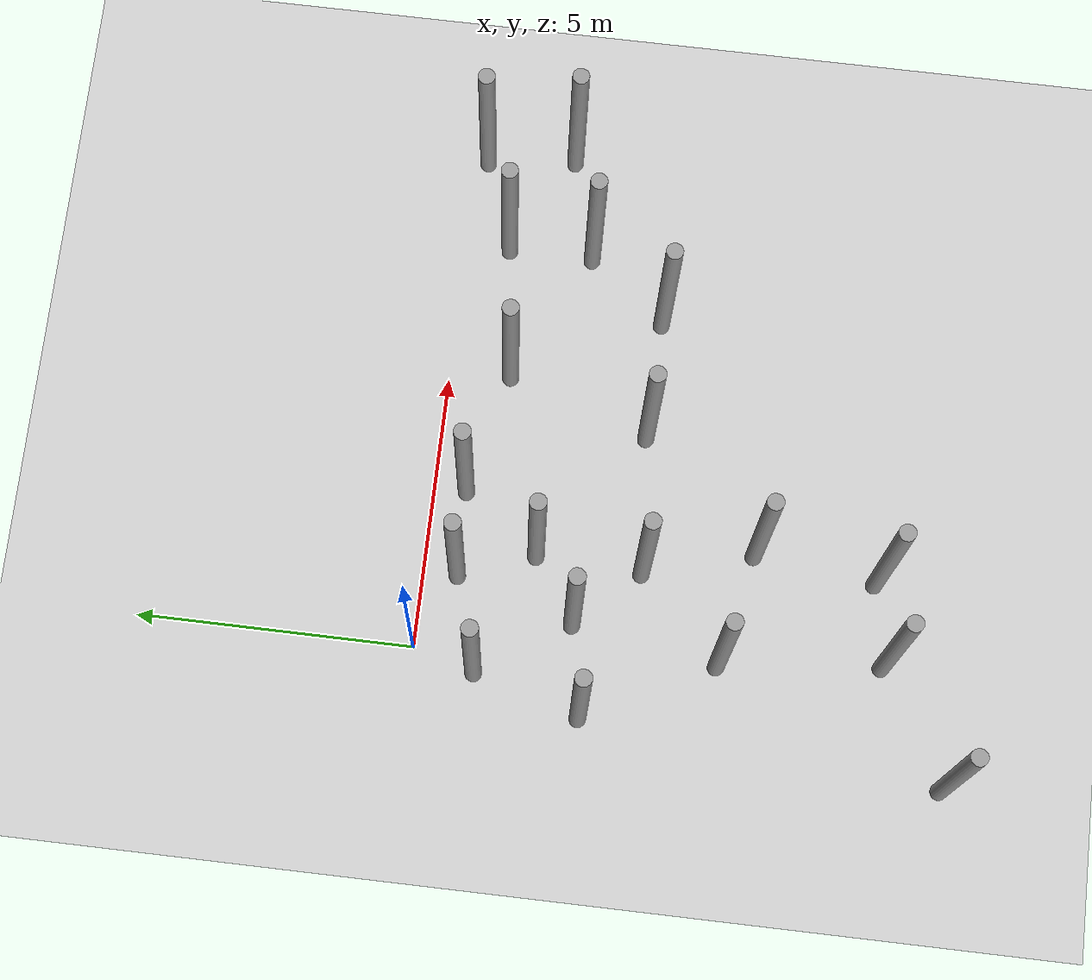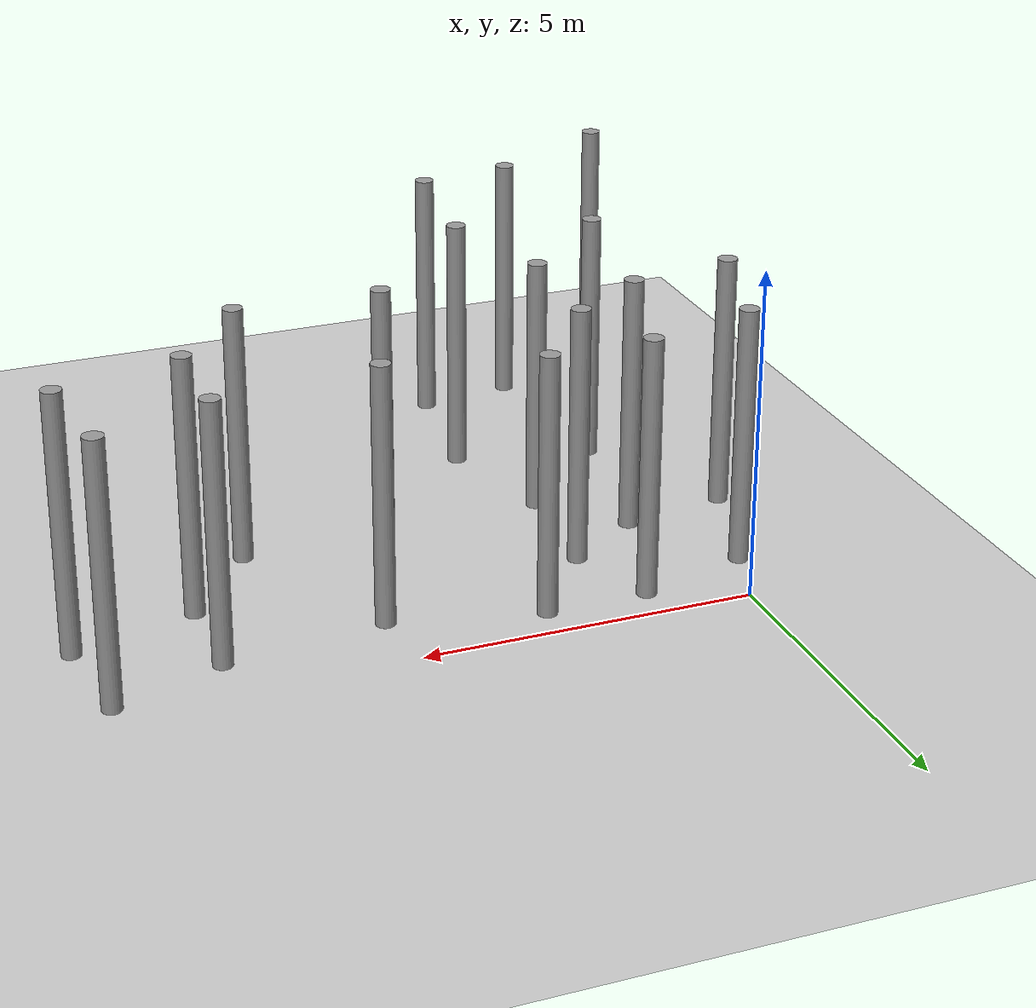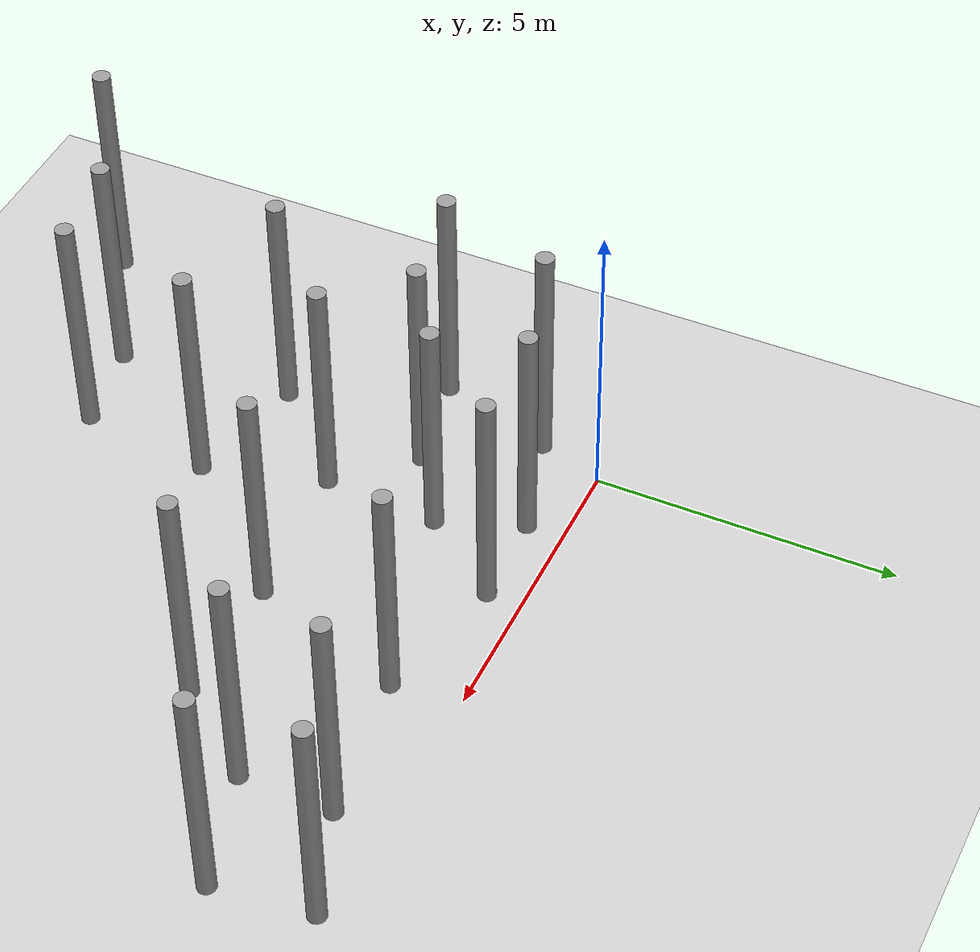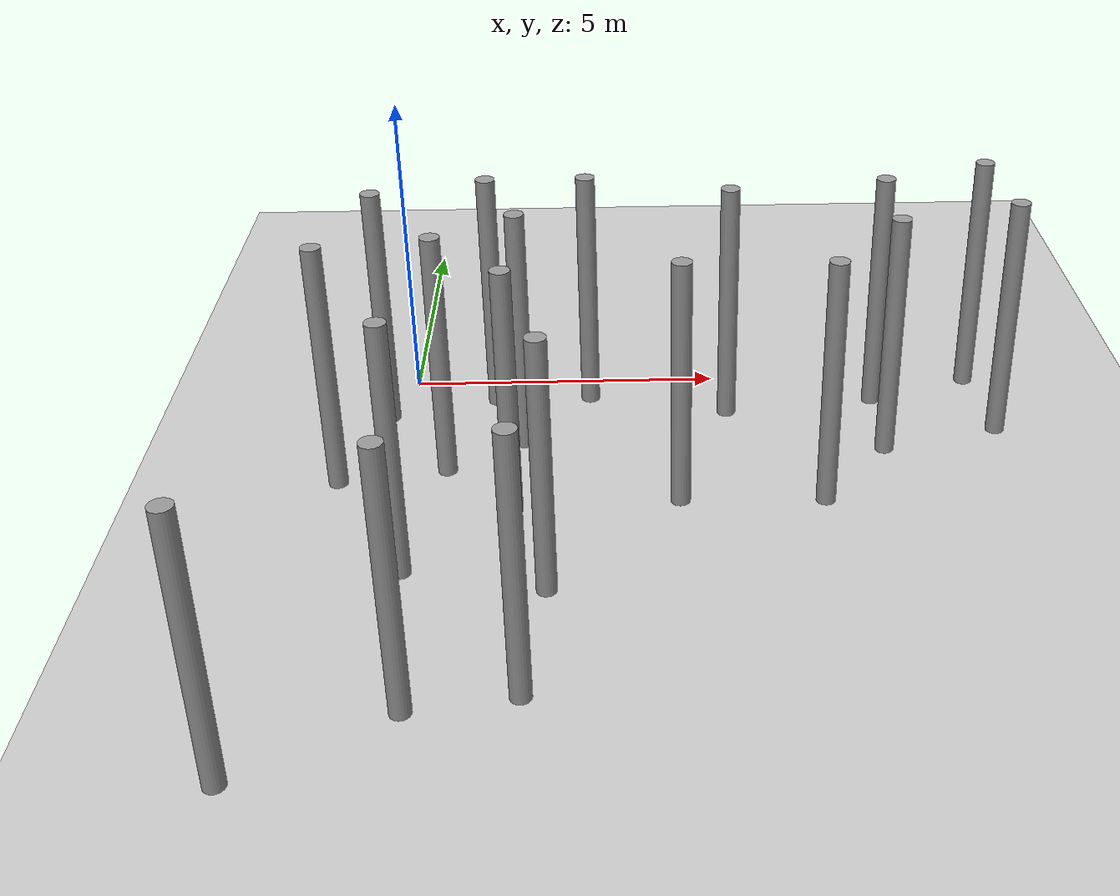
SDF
<sdf version="1.6">
 <world name="default">
  <model name="ground_plane">
   <static>1</static>
   <link name="link">
    <collision name="collision">
     <geometry><plane><normal>0 0 1</normal><size>100 100</size></plane></geometry>
     <surface><friction><ode><mu>100</mu><mu2>50</mu2></ode></friction></surface>
    </collision>
    <visual name="visual">
     <cast_shadows>0</cast_shadows>
     <geometry><plane><normal>0 0 1</normal><size>100 100</size></plane></geometry>
     <material>
      <script><uri>file://media/materials/scripts/gazebo.material</uri><name>Gazebo/Grey</name></script>
     </material>
    </visual>
   </link>
  </model>
  <model name="unit_cylinder_clone_26">
   <link name="link">
    <inertial>
     <mass>1000</mass>
     <inertia><ixx>145.833</ixx><ixy>0</ixy><ixz>0</ixz><iyy>145.833</iyy><iyz>0</iyz><izz>125</izz></inertia>
    </inertial>
    <visual name="visual">
     <geometry><cylinder><radius>0.15</radius><length>4</length></cylinder></geometry>
     <material>
      <script><name>Gazebo/Grey</name><uri>file://media/materials/scripts/gazebo.material</uri></script>
      <shader type="pixel"><normal_map>__default__</normal_map></shader>
      <ambient>0.3 0.3 0.3 1</ambient>
      <diffuse>0.7 0.7 0.7 1</diffuse>
      <specular>0.01 0.01 0.01 1</specular>
      <emissive>0 0 0 1</emissive>
     </material>
    </visual>
    <collision name="collision">
     <geometry><cylinder><radius>0.15</radius><length>4</length></cylinder></geometry>
     <surface>
      <friction>
       <ode><mu>1</mu><mu2>1</mu2><fdir1>0 0 0</fdir1><slip1>0</slip1><slip2>0</slip2></ode>
       <torsional>
        <coefficient>1</coefficient>
        <patch_radius>0</patch_radius>
        <surface_radius>0</surface_radius>
        <use_patch_radius>1</use_patch_radius>
        <ode><slip>0</slip></ode>
       </torsional>
      </friction>
      <bounce><restitution_coefficient>0</restitution_coefficient><threshold>1e+06</threshold></bounce>
      <contact>
       <collide_without_contact>0</collide_without_contact>
       <collide_without_contact_bitmask>1</collide_without_contact_bitmask>
       <collide_bitmask>1</collide_bitmask>
       <ode>
        <soft_cfm>0</soft_cfm>
        <soft_erp>0.2</soft_erp>
        <kp>1e+13</kp>
        <kd>1</kd>
        <max_vel>0.01</max_vel>
        <min_depth>0</min_depth>
       </ode>
       <bullet>
        <split_impulse>1</split_impulse>
        <split_impulse_penetration_threshold>-0.01</split_impulse_penetration_threshold>
        <soft_cfm>0</soft_cfm>
        <soft_erp>0.2</soft_erp>
        <kp>1e+13</kp>
        <kd>1</kd>
       </bullet>
      </contact>
     </surface>
    </collision>
   </link>
   <static>0</static>
   <pose>2.93407 -0.573866 2 0 0 -0.002925</pose>
  </model>
  <model name="unit_cylinder_clone_27">
   <link name="link">
    <inertial>
     <mass>1000</mass>
     <inertia><ixx>145.833</ixx><ixy>0</ixy><ixz>0</ixz><iyy>145.833</iyy><iyz>0</iyz><izz>125</izz></inertia>
    </inertial>
    <visual name="visual">
     <geometry><cylinder><radius>0.15</radius><length>4</length></cylinder></geometry>
     <material>
      <script><name>Gazebo/Grey</name><uri>file://media/materials/scripts/gazebo.material</uri></script>
      <shader type="pixel"><normal_map>__default__</normal_map></shader>
      <ambient>0.3 0.3 0.3 1</ambient>
      <diffuse>0.7 0.7 0.7 1</diffuse>
      <specular>0.01 0.01 0.01 1</specular>
      <emissive>0 0 0 1</emissive>
     </material>
    </visual>
    <collision name="collision">
     <geometry><cylinder><radius>0.15</radius><length>4</length></cylinder></geometry>
     <surface>
      <friction>
       <ode><mu>1</mu><mu2>1</mu2><fdir1>0 0 0</fdir1><slip1>0</slip1><slip2>0</slip2></ode>
       <torsional>
        <coefficient>1</coefficient>
        <patch_radius>0</patch_radius>
        <surface_radius>0</surface_radius>
        <use_patch_radius>1</use_patch_radius>
        <ode><slip>0</slip></ode>
       </torsional>
      </friction>
      <bounce><restitution_coefficient>0</restitution_coefficient><threshold>1e+06</threshold></bounce>
      <contact>
       <collide_without_contact>0</collide_without_contact>
       <collide_without_contact_bitmask>1</collide_without_contact_bitmask>
       <collide_bitmask>1</collide_bitmask>
       <ode>
        <soft_cfm>0</soft_cfm>
        <soft_erp>0.2</soft_erp>
        <kp>1e+13</kp>
        <kd>1</kd>
        <max_vel>0.01</max_vel>
        <min_depth>0</min_depth>
       </ode>
       <bullet>
        <split_impulse>1</split_impulse>
        <split_impulse_penetration_threshold>-0.01</split_impulse_penetration_threshold>
        <soft_cfm>0</soft_cfm>
        <soft_erp>0.2</soft_erp>
        <kp>1e+13</kp>
        <kd>1</kd>
       </bullet>
      </contact>
     </surface>
    </collision>
   </link>
   <static>0</static>
   <pose>1.88877 -1.95941 2 0 0 -0.002924</pose>
  </model>
  <model name="unit_cylinder_clone_31">
   <link name="link">
    <inertial>
     <mass>1000</mass>
     <inertia><ixx>145.833</ixx><ixy>0</ixy><ixz>0</ixz><iyy>145.833</iyy><iyz>0</iyz><izz>125</izz></inertia>
    </inertial>
    <visual name="visual">
     <geometry><cylinder><radius>0.15</radius><length>4</length></cylinder></geometry>
     <material>
      <script><name>Gazebo/Grey</name><uri>file://media/materials/scripts/gazebo.material</uri></script>
      <shader type="pixel"><normal_map>__default__</normal_map></shader>
      <ambient>0.3 0.3 0.3 1</ambient>
      <diffuse>0.7 0.7 0.7 1</diffuse>
      <specular>0.01 0.01 0.01 1</specular>
      <emissive>0 0 0 1</emissive>
     </material>
    </visual>
    <collision name="collision">
     <geometry><cylinder><radius>0.15</radius><length>4</length></cylinder></geometry>
     <surface>
      <friction>
       <ode><mu>1</mu><mu2>1</mu2><fdir1>0 0 0</fdir1><slip1>0</slip1><slip2>0</slip2></ode>
       <torsional>
        <coefficient>1</coefficient>
        <patch_radius>0</patch_radius>
        <surface_radius>0</surface_radius>
        <use_patch_radius>1</use_patch_radius>
        <ode><slip>0</slip></ode>
       </torsional>
      </friction>
      <bounce><restitution_coefficient>0</restitution_coefficient><threshold>1e+06</threshold></bounce>
      <contact>
       <collide_without_contact>0</collide_without_contact>
       <collide_without_contact_bitmask>1</collide_without_contact_bitmask>
       <collide_bitmask>1</collide_bitmask>
       <ode>
        <soft_cfm>0</soft_cfm>
        <soft_erp>0.2</soft_erp>
        <kp>1e+13</kp>
        <kd>1</kd>
        <max_vel>0.01</max_vel>
        <min_depth>0</min_depth>
       </ode>
       <bullet>
        <split_impulse>1</split_impulse>
        <split_impulse_penetration_threshold>-0.01</split_impulse_penetration_threshold>
        <soft_cfm>0</soft_cfm>
        <soft_erp>0.2</soft_erp>
        <kp>1e+13</kp>
        <kd>1</kd>
       </bullet>
      </contact>
     </surface>
    </collision>
   </link>
   <static>0</static>
   <pose>5.18009 -1.11592 2 0 0 -0.002846</pose>
  </model>
  <model name="unit_cylinder_clone_32">
   <link name="link">
    <inertial>
     <mass>1000</mass>
     <inertia><ixx>145.833</ixx><ixy>0</ixy><ixz>0</ixz><iyy>145.833</iyy><iyz>0</iyz><izz>125</izz></inertia>
    </inertial>
    <visual name="visual">
     <geometry><cylinder><radius>0.15</radius><length>4</length></cylinder></geometry>
     <material>
      <script><name>Gazebo/Grey</name><uri>file://media/materials/scripts/gazebo.material</uri></script>
      <shader type="pixel"><normal_map>__default__</normal_map></shader>
      <ambient>0.3 0.3 0.3 1</ambient>
      <diffuse>0.7 0.7 0.7 1</diffuse>
      <specular>0.01 0.01 0.01 1</specular>
      <emissive>0 0 0 1</emissive>
     </material>
    </visual>
    <collision name="collision">
     <geometry><cylinder><radius>0.15</radius><length>4</length></cylinder></geometry>
     <surface>
      <friction>
       <ode><mu>1</mu><mu2>1</mu2><fdir1>0 0 0</fdir1><slip1>0</slip1><slip2>0</slip2></ode>
       <torsional>
        <coefficient>1</coefficient>
        <patch_radius>0</patch_radius>
        <surface_radius>0</surface_radius>
        <use_patch_radius>1</use_patch_radius>
        <ode><slip>0</slip></ode>
       </torsional>
      </friction>
      <bounce><restitution_coefficient>0</restitution_coefficient><threshold>1e+06</threshold></bounce>
      <contact>
       <collide_without_contact>0</collide_without_contact>
       <collide_without_contact_bitmask>1</collide_without_contact_bitmask>
       <collide_bitmask>1</collide_bitmask>
       <ode>
        <soft_cfm>0</soft_cfm>
        <soft_erp>0.2</soft_erp>
        <kp>1e+13</kp>
        <kd>1</kd>
        <max_vel>0.01</max_vel>
        <min_depth>0</min_depth>
       </ode>
       <bullet>
        <split_impulse>1</split_impulse>
        <split_impulse_penetration_threshold>-0.01</split_impulse_penetration_threshold>
        <soft_cfm>0</soft_cfm>
        <soft_erp>0.2</soft_erp>
        <kp>1e+13</kp>
        <kd>1</kd>
       </bullet>
      </contact>
     </surface>
    </collision>
   </link>
   <static>0</static>
   <pose>7.61991 -2.35221 1.99999 0 0 -0.002785</pose>
  </model>
  <model name="unit_cylinder_clone_33">
   <link name="link">
    <inertial>
     <mass>1000</mass>
     <inertia><ixx>145.833</ixx><ixy>0</ixy><ixz>0</ixz><iyy>145.833</iyy><iyz>0</iyz><izz>125</izz></inertia>
    </inertial>
    <visual name="visual">
     <geometry><cylinder><radius>0.15</radius><length>4</length></cylinder></geometry>
     <material>
      <script><name>Gazebo/Grey</name><uri>file://media/materials/scripts/gazebo.material</uri></script>
      <shader type="pixel"><normal_map>__default__</normal_map></shader>
      <ambient>0.3 0.3 0.3 1</ambient>
      <diffuse>0.7 0.7 0.7 1</diffuse>
      <specular>0.01 0.01 0.01 1</specular>
      <emissive>0 0 0 1</emissive>
     </material>
    </visual>
    <collision name="collision">
     <geometry><cylinder><radius>0.15</radius><length>4</length></cylinder></geometry>
     <surface>
      <friction>
       <ode><mu>1</mu><mu2>1</mu2><fdir1>0 0 0</fdir1><slip1>0</slip1><slip2>0</slip2></ode>
       <torsional>
        <coefficient>1</coefficient>
        <patch_radius>0</patch_radius>
        <surface_radius>0</surface_radius>
        <use_patch_radius>1</use_patch_radius>
        <ode><slip>0</slip></ode>
       </torsional>
      </friction>
      <bounce><restitution_coefficient>0</restitution_coefficient><threshold>1e+06</threshold></bounce>
      <contact>
       <collide_without_contact>0</collide_without_contact>
       <collide_without_contact_bitmask>1</collide_without_contact_bitmask>
       <collide_bitmask>1</collide_bitmask>
       <ode>
        <soft_cfm>0</soft_cfm>
        <soft_erp>0.2</soft_erp>
        <kp>1e+13</kp>
        <kd>1</kd>
        <max_vel>0.01</max_vel>
        <min_depth>0</min_depth>
       </ode>
       <bullet>
        <split_impulse>1</split_impulse>
        <split_impulse_penetration_threshold>-0.01</split_impulse_penetration_threshold>
        <soft_cfm>0</soft_cfm>
        <soft_erp>0.2</soft_erp>
        <kp>1e+13</kp>
        <kd>1</kd>
       </bullet>
      </contact>
     </surface>
    </collision>
   </link>
   <static>0</static>
   <pose>9.32456 -0.210842 1.99999 0 0 -0.002798</pose>
  </model>
  <model name="unit_cylinder_clone_34">
   <link name="link">
    <inertial>
     <mass>1000</mass>
     <inertia><ixx>145.833</ixx><ixy>0</ixy><ixz>0</ixz><iyy>145.833</iyy><iyz>0</iyz><izz>125</izz></inertia>
    </inertial>
    <visual name="visual">
     <geometry><cylinder><radius>0.15</radius><length>4</length></cylinder></geometry>
     <material>
      <script><name>Gazebo/Grey</name><uri>file://media/materials/scripts/gazebo.material</uri></script>
      <shader type="pixel"><normal_map>__default__</normal_map></shader>
      <ambient>0.3 0.3 0.3 1</ambient>
      <diffuse>0.7 0.7 0.7 1</diffuse>
      <specular>0.01 0.01 0.01 1</specular>
      <emissive>0 0 0 1</emissive>
     </material>
    </visual>
    <collision name="collision">
     <geometry><cylinder><radius>0.15</radius><length>4</length></cylinder></geometry>
     <surface>
      <friction>
       <ode><mu>1</mu><mu2>1</mu2><fdir1>0 0 0</fdir1><slip1>0</slip1><slip2>0</slip2></ode>
       <torsional>
        <coefficient>1</coefficient>
        <patch_radius>0</patch_radius>
        <surface_radius>0</surface_radius>
        <use_patch_radius>1</use_patch_radius>
        <ode><slip>0</slip></ode>
       </torsional>
      </friction>
      <bounce><restitution_coefficient>0</restitution_coefficient><threshold>1e+06</threshold></bounce>
      <contact>
       <collide_without_contact>0</collide_without_contact>
       <collide_without_contact_bitmask>1</collide_without_contact_bitmask>
       <collide_bitmask>1</collide_bitmask>
       <ode>
        <soft_cfm>0</soft_cfm>
        <soft_erp>0.2</soft_erp>
        <kp>1e+13</kp>
        <kd>1</kd>
        <max_vel>0.01</max_vel>
        <min_depth>0</min_depth>
       </ode>
       <bullet>
        <split_impulse>1</split_impulse>
        <split_impulse_penetration_threshold>-0.01</split_impulse_penetration_threshold>
        <soft_cfm>0</soft_cfm>
        <soft_erp>0.2</soft_erp>
        <kp>1e+13</kp>
        <kd>1</kd>
       </bullet>
      </contact>
     </surface>
    </collision>
   </link>
   <static>0</static>
   <pose>9.5139 -1.83248 1.99999 0 0 -0.002641</pose>
  </model>
  <model name="unit_cylinder_clone_36">
   <link name="link">
    <inertial>
     <mass>1000</mass>
     <inertia><ixx>145.833</ixx><ixy>0</ixy><ixz>0</ixz><iyy>145.833</iyy><iyz>0</iyz><izz>125</izz></inertia>
    </inertial>
    <visual name="visual">
     <geometry><cylinder><radius>0.15</radius><length>4</length></cylinder></geometry>
     <material>
      <script><name>Gazebo/Grey</name><uri>file://media/materials/scripts/gazebo.material</uri></script>
      <shader type="pixel"><normal_map>__default__</normal_map></shader>
      <ambient>0.3 0.3 0.3 1</ambient>
      <diffuse>0.7 0.7 0.7 1</diffuse>
      <specular>0.01 0.01 0.01 1</specular>
      <emissive>0 0 0 1</emissive>
     </material>
    </visual>
    <collision name="collision">
     <geometry><cylinder><radius>0.15</radius><length>4</length></cylinder></geometry>
     <surface>
      <friction>
       <ode><mu>1</mu><mu2>1</mu2><fdir1>0 0 0</fdir1><slip1>0</slip1><slip2>0</slip2></ode>
       <torsional>
        <coefficient>1</coefficient>
        <patch_radius>0</patch_radius>
        <surface_radius>0</surface_radius>
        <use_patch_radius>1</use_patch_radius>
        <ode><slip>0</slip></ode>
       </torsional>
      </friction>
      <bounce><restitution_coefficient>0</restitution_coefficient><threshold>1e+06</threshold></bounce>
      <contact>
       <collide_without_contact>0</collide_without_contact>
       <collide_without_contact_bitmask>1</collide_without_contact_bitmask>
       <collide_bitmask>1</collide_bitmask>
       <ode>
        <soft_cfm>0</soft_cfm>
        <soft_erp>0.2</soft_erp>
        <kp>1e+13</kp>
        <kd>1</kd>
        <max_vel>0.01</max_vel>
        <min_depth>0</min_depth>
       </ode>
       <bullet>
        <split_impulse>1</split_impulse>
        <split_impulse_penetration_threshold>-0.01</split_impulse_penetration_threshold>
        <soft_cfm>0</soft_cfm>
        <soft_erp>0.2</soft_erp>
        <kp>1e+13</kp>
        <kd>1</kd>
       </bullet>
      </contact>
     </surface>
    </collision>
   </link>
   <static>0</static>
   <pose>4.30534 -3.6941 2 0 0 -0.002606</pose>
  </model>
  <model name="unit_cylinder_clone_38">
   <link name="link">
    <inertial>
     <mass>1000</mass>
     <inertia><ixx>145.833</ixx><ixy>0</ixy><ixz>0</ixz><iyy>145.833</iyy><iyz>0</iyz><izz>125</izz></inertia>
    </inertial>
    <visual name="visual">
     <geometry><cylinder><radius>0.15</radius><length>4</length></cylinder></geometry>
     <material>
      <script><name>Gazebo/Grey</name><uri>file://media/materials/scripts/gazebo.material</uri></script>
      <shader type="pixel"><normal_map>__default__</normal_map></shader>
      <ambient>0.3 0.3 0.3 1</ambient>
      <diffuse>0.7 0.7 0.7 1</diffuse>
      <specular>0.01 0.01 0.01 1</specular>
      <emissive>0 0 0 1</emissive>
     </material>
    </visual>
    <collision name="collision">
     <geometry><cylinder><radius>0.15</radius><length>4</length></cylinder></geometry>
     <surface>
      <friction>
       <ode><mu>1</mu><mu2>1</mu2><fdir1>0 0 0</fdir1><slip1>0</slip1><slip2>0</slip2></ode>
       <torsional>
        <coefficient>1</coefficient>
        <patch_radius>0</patch_radius>
        <surface_radius>0</surface_radius>
        <use_patch_radius>1</use_patch_radius>
        <ode><slip>0</slip></ode>
       </torsional>
      </friction>
      <bounce><restitution_coefficient>0</restitution_coefficient><threshold>1e+06</threshold></bounce>
      <contact>
       <collide_without_contact>0</collide_without_contact>
       <collide_without_contact_bitmask>1</collide_without_contact_bitmask>
       <collide_bitmask>1</collide_bitmask>
       <ode>
        <soft_cfm>0</soft_cfm>
        <soft_erp>0.2</soft_erp>
        <kp>1e+13</kp>
        <kd>1</kd>
        <max_vel>0.01</max_vel>
        <min_depth>0</min_depth>
       </ode>
       <bullet>
        <split_impulse>1</split_impulse>
        <split_impulse_penetration_threshold>-0.01</split_impulse_penetration_threshold>
        <soft_cfm>0</soft_cfm>
        <soft_erp>0.2</soft_erp>
        <kp>1e+13</kp>
        <kd>1</kd>
       </bullet>
      </contact>
     </surface>
    </collision>
   </link>
   <static>0</static>
   <pose>0.265071 -5.35656 1.99999 0 0 -0.002835</pose>
  </model>
  <model name="unit_cylinder_clone_40">
   <link name="link">
    <inertial>
     <mass>1000</mass>
     <inertia><ixx>145.833</ixx><ixy>0</ixy><ixz>0</ixz><iyy>145.833</iyy><iyz>0</iyz><izz>125</izz></inertia>
    </inertial>
    <visual name="visual">
     <geometry><cylinder><radius>0.15</radius><length>4</length></cylinder></geometry>
     <material>
      <script><name>Gazebo/Grey</name><uri>file://media/materials/scripts/gazebo.material</uri></script>
      <shader type="pixel"><normal_map>__default__</normal_map></shader>
      <ambient>0.3 0.3 0.3 1</ambient>
      <diffuse>0.7 0.7 0.7 1</diffuse>
      <specular>0.01 0.01 0.01 1</specular>
      <emissive>0 0 0 1</emissive>
     </material>
    </visual>
    <collision name="collision">
     <geometry><cylinder><radius>0.15</radius><length>4</length></cylinder></geometry>
     <surface>
      <friction>
       <ode><mu>1</mu><mu2>1</mu2><fdir1>0 0 0</fdir1><slip1>0</slip1><slip2>0</slip2></ode>
       <torsional>
        <coefficient>1</coefficient>
        <patch_radius>0</patch_radius>
        <surface_radius>0</surface_radius>
        <use_patch_radius>1</use_patch_radius>
        <ode><slip>0</slip></ode>
       </torsional>
      </friction>
      <bounce><restitution_coefficient>0</restitution_coefficient><threshold>1e+06</threshold></bounce>
      <contact>
       <collide_without_contact>0</collide_without_contact>
       <collide_without_contact_bitmask>1</collide_without_contact_bitmask>
       <collide_bitmask>1</collide_bitmask>
       <ode>
        <soft_cfm>0</soft_cfm>
        <soft_erp>0.2</soft_erp>
        <kp>1e+13</kp>
        <kd>1</kd>
        <max_vel>0.01</max_vel>
        <min_depth>0</min_depth>
       </ode>
       <bullet>
        <split_impulse>1</split_impulse>
        <split_impulse_penetration_threshold>-0.01</split_impulse_penetration_threshold>
        <soft_cfm>0</soft_cfm>
        <soft_erp>0.2</soft_erp>
        <kp>1e+13</kp>
        <kd>1</kd>
       </bullet>
      </contact>
     </surface>
    </collision>
   </link>
   <static>0</static>
   <pose>0.580232 -8.26412 1.99999 0 0 -0.002727</pose>
  </model>
  <model name="unit_cylinder_clone_41">
   <link name="link">
    <inertial>
     <mass>1000</mass>
     <inertia><ixx>145.833</ixx><ixy>0</ixy><ixz>0</ixz><iyy>145.833</iyy><iyz>0</iyz><izz>125</izz></inertia>
    </inertial>
    <visual name="visual">
     <geometry><cylinder><radius>0.15</radius><length>4</length></cylinder></geometry>
     <material>
      <script><name>Gazebo/Grey</name><uri>file://media/materials/scripts/gazebo.material</uri></script>
      <shader type="pixel"><normal_map>__default__</normal_map></shader>
      <ambient>0.3 0.3 0.3 1</ambient>
      <diffuse>0.7 0.7 0.7 1</diffuse>
      <specular>0.01 0.01 0.01 1</specular>
      <emissive>0 0 0 1</emissive>
     </material>
    </visual>
    <collision name="collision">
     <geometry><cylinder><radius>0.15</radius><length>4</length></cylinder></geometry>
     <surface>
      <friction>
       <ode><mu>1</mu><mu2>1</mu2><fdir1>0 0 0</fdir1><slip1>0</slip1><slip2>0</slip2></ode>
       <torsional>
        <coefficient>1</coefficient>
        <patch_radius>0</patch_radius>
        <surface_radius>0</surface_radius>
        <use_patch_radius>1</use_patch_radius>
        <ode><slip>0</slip></ode>
       </torsional>
      </friction>
      <bounce><restitution_coefficient>0</restitution_coefficient><threshold>1e+06</threshold></bounce>
      <contact>
       <collide_without_contact>0</collide_without_contact>
       <collide_without_contact_bitmask>1</collide_without_contact_bitmask>
       <collide_bitmask>1</collide_bitmask>
       <ode>
        <soft_cfm>0</soft_cfm>
        <soft_erp>0.2</soft_erp>
        <kp>1e+13</kp>
        <kd>1</kd>
        <max_vel>0.01</max_vel>
        <min_depth>0</min_depth>
       </ode>
       <bullet>
        <split_impulse>1</split_impulse>
        <split_impulse_penetration_threshold>-0.01</split_impulse_penetration_threshold>
        <soft_cfm>0</soft_cfm>
        <soft_erp>0.2</soft_erp>
        <kp>1e+13</kp>
        <kd>1</kd>
       </bullet>
      </contact>
     </surface>
    </collision>
   </link>
   <static>0</static>
   <pose>-1.47455 -9.43796 1.99999 0 0 -0.002771</pose>
  </model>
  <model name="unit_cylinder_clone_42">
   <link name="link">
    <inertial>
     <mass>1000</mass>
     <inertia><ixx>145.833</ixx><ixy>0</ixy><ixz>0</ixz><iyy>145.833</iyy><iyz>0</iyz><izz>125</izz></inertia>
    </inertial>
    <visual name="visual">
     <geometry><cylinder><radius>0.15</radius><length>4</length></cylinder></geometry>
     <material>
      <script><name>Gazebo/Grey</name><uri>file://media/materials/scripts/gazebo.material</uri></script>
      <shader type="pixel"><normal_map>__default__</normal_map></shader>
      <ambient>0.3 0.3 0.3 1</ambient>
      <diffuse>0.7 0.7 0.7 1</diffuse>
      <specular>0.01 0.01 0.01 1</specular>
      <emissive>0 0 0 1</emissive>
     </material>
    </visual>
    <collision name="collision">
     <geometry><cylinder><radius>0.15</radius><length>4</length></cylinder></geometry>
     <surface>
      <friction>
       <ode><mu>1</mu><mu2>1</mu2><fdir1>0 0 0</fdir1><slip1>0</slip1><slip2>0</slip2></ode>
       <torsional>
        <coefficient>1</coefficient>
        <patch_radius>0</patch_radius>
        <surface_radius>0</surface_radius>
        <use_patch_radius>1</use_patch_radius>
        <ode><slip>0</slip></ode>
       </torsional>
      </friction>
      <bounce><restitution_coefficient>0</restitution_coefficient><threshold>1e+06</threshold></bounce>
      <contact>
       <collide_without_contact>0</collide_without_contact>
       <collide_without_contact_bitmask>1</collide_without_contact_bitmask>
       <collide_bitmask>1</collide_bitmask>
       <ode>
        <soft_cfm>0</soft_cfm>
        <soft_erp>0.2</soft_erp>
        <kp>1e+13</kp>
        <kd>1</kd>
        <max_vel>0.01</max_vel>
        <min_depth>0</min_depth>
       </ode>
       <bullet>
        <split_impulse>1</split_impulse>
        <split_impulse_penetration_threshold>-0.01</split_impulse_penetration_threshold>
        <soft_cfm>0</soft_cfm>
        <soft_erp>0.2</soft_erp>
        <kp>1e+13</kp>
        <kd>1</kd>
       </bullet>
      </contact>
     </surface>
    </collision>
   </link>
   <static>0</static>
   <pose>2.34085 -5.83821 2 0 0 -0.003264</pose>
  </model>
  <model name="unit_cylinder_clone_44">
   <link name="link">
    <inertial>
     <mass>1000</mass>
     <inertia><ixx>145.833</ixx><ixy>0</ixy><ixz>0</ixz><iyy>145.833</iyy><iyz>0</iyz><izz>125</izz></inertia>
    </inertial>
    <visual name="visual">
     <geometry><cylinder><radius>0.15</radius><length>4</length></cylinder></geometry>
     <material>
      <script><name>Gazebo/Grey</name><uri>file://media/materials/scripts/gazebo.material</uri></script>
      <shader type="pixel"><normal_map>__default__</normal_map></shader>
      <ambient>0.3 0.3 0.3 1</ambient>
      <diffuse>0.7 0.7 0.7 1</diffuse>
      <specular>0.01 0.01 0.01 1</specular>
      <emissive>0 0 0 1</emissive>
     </material>
    </visual>
    <collision name="collision">
     <geometry><cylinder><radius>0.15</radius><length>4</length></cylinder></geometry>
     <surface>
      <friction>
       <ode><mu>1</mu><mu2>1</mu2><fdir1>0 0 0</fdir1><slip1>0</slip1><slip2>0</slip2></ode>
       <torsional>
        <coefficient>1</coefficient>
        <patch_radius>0</patch_radius>
        <surface_radius>0</surface_radius>
        <use_patch_radius>1</use_patch_radius>
        <ode><slip>0</slip></ode>
       </torsional>
      </friction>
      <bounce><restitution_coefficient>0</restitution_coefficient><threshold>1e+06</threshold></bounce>
      <contact>
       <collide_without_contact>0</collide_without_contact>
       <collide_without_contact_bitmask>1</collide_without_contact_bitmask>
       <collide_bitmask>1</collide_bitmask>
       <ode>
        <soft_cfm>0</soft_cfm>
        <soft_erp>0.2</soft_erp>
        <kp>1e+13</kp>
        <kd>1</kd>
        <max_vel>0.01</max_vel>
        <min_depth>0</min_depth>
       </ode>
       <bullet>
        <split_impulse>1</split_impulse>
        <split_impulse_penetration_threshold>-0.01</split_impulse_penetration_threshold>
        <soft_cfm>0</soft_cfm>
        <soft_erp>0.2</soft_erp>
        <kp>1e+13</kp>
        <kd>1</kd>
       </bullet>
      </contact>
     </surface>
    </collision>
   </link>
   <static>0</static>
   <pose>0.714324 -2.7357 1.99999 0 0 -0.002797</pose>
  </model>
  <model name="unit_cylinder_clone_45">
   <link name="link">
    <inertial>
     <mass>1000</mass>
     <inertia><ixx>145.833</ixx><ixy>0</ixy><ixz>0</ixz><iyy>145.833</iyy><iyz>0</iyz><izz>125</izz></inertia>
    </inertial>
    <visual name="visual">
     <geometry><cylinder><radius>0.15</radius><length>4</length></cylinder></geometry>
     <material>
      <script><name>Gazebo/Grey</name><uri>file://media/materials/scripts/gazebo.material</uri></script>
      <shader type="pixel"><normal_map>__default__</normal_map></shader>
      <ambient>0.3 0.3 0.3 1</ambient>
      <diffuse>0.7 0.7 0.7 1</diffuse>
      <specular>0.01 0.01 0.01 1</specular>
      <emissive>0 0 0 1</emissive>
     </material>
    </visual>
    <collision name="collision">
     <geometry><cylinder><radius>0.15</radius><length>4</length></cylinder></geometry>
     <surface>
      <friction>
       <ode><mu>1</mu><mu2>1</mu2><fdir1>0 0 0</fdir1><slip1>0</slip1><slip2>0</slip2></ode>
       <torsional>
        <coefficient>1</coefficient>
        <patch_radius>0</patch_radius>
        <surface_radius>0</surface_radius>
        <use_patch_radius>1</use_patch_radius>
        <ode><slip>0</slip></ode>
       </torsional>
      </friction>
      <bounce><restitution_coefficient>0</restitution_coefficient><threshold>1e+06</threshold></bounce>
      <contact>
       <collide_without_contact>0</collide_without_contact>
       <collide_without_contact_bitmask>1</collide_without_contact_bitmask>
       <collide_bitmask>1</collide_bitmask>
       <ode>
        <soft_cfm>0</soft_cfm>
        <soft_erp>0.2</soft_erp>
        <kp>1e+13</kp>
        <kd>1</kd>
        <max_vel>0.01</max_vel>
        <min_depth>0</min_depth>
       </ode>
       <bullet>
        <split_impulse>1</split_impulse>
        <split_impulse_penetration_threshold>-0.01</split_impulse_penetration_threshold>
        <soft_cfm>0</soft_cfm>
        <soft_erp>0.2</soft_erp>
        <kp>1e+13</kp>
        <kd>1</kd>
       </bullet>
      </contact>
     </surface>
    </collision>
   </link>
   <static>0</static>
   <pose>1.78349 -3.86859 2 0 0 -0.003094</pose>
  </model>
  <model name="unit_cylinder_clone_8_clone_0">
   <link name="link">
    <inertial>
     <mass>1000</mass>
     <inertia><ixx>145.833</ixx><ixy>0</ixy><ixz>0</ixz><iyy>145.833</iyy><iyz>0</iyz><izz>125</izz></inertia>
    </inertial>
    <visual name="visual">
     <geometry><cylinder><radius>0.15</radius><length>4</length></cylinder></geometry>
     <material>
      <script><name>Gazebo/Grey</name><uri>file://media/materials/scripts/gazebo.material</uri></script>
      <shader type="pixel"><normal_map>__default__</normal_map></shader>
      <ambient>0.3 0.3 0.3 1</ambient>
      <diffuse>0.7 0.7 0.7 1</diffuse>
      <specular>0.01 0.01 0.01 1</specular>
      <emissive>0 0 0 1</emissive>
     </material>
    </visual>
    <collision name="collision">
     <geometry><cylinder><radius>0.15</radius><length>4</length></cylinder></geometry>
     <surface>
      <friction>
       <ode><mu>1</mu><mu2>1</mu2><fdir1>0 0 0</fdir1><slip1>0</slip1><slip2>0</slip2></ode>
       <torsional>
        <coefficient>1</coefficient>
        <patch_radius>0</patch_radius>
        <surface_radius>0</surface_radius>
        <use_patch_radius>1</use_patch_radius>
        <ode><slip>0</slip></ode>
       </torsional>
      </friction>
      <bounce><restitution_coefficient>0</restitution_coefficient><threshold>1e+06</threshold></bounce>
      <contact>
       <collide_without_contact>0</collide_without_contact>
       <collide_without_contact_bitmask>1</collide_without_contact_bitmask>
       <collide_bitmask>1</collide_bitmask>
       <ode>
        <soft_cfm>0</soft_cfm>
        <soft_erp>0.2</soft_erp>
        <kp>1e+13</kp>
        <kd>1</kd>
        <max_vel>0.01</max_vel>
        <min_depth>0</min_depth>
       </ode>
       <bullet>
        <split_impulse>1</split_impulse>
        <split_impulse_penetration_threshold>-0.01</split_impulse_penetration_threshold>
        <soft_cfm>0</soft_cfm>
        <soft_erp>0.2</soft_erp>
        <kp>1e+13</kp>
        <kd>1</kd>
       </bullet>
      </contact>
     </surface>
    </collision>
   </link>
   <static>0</static>
   <pose>-0.9388 -3.02059 2 0 0 -0.002886</pose>
  </model>
  <model name="unit_cylinder_clone_0_clone">
   <link name="link">
    <inertial>
     <mass>1000</mass>
     <inertia><ixx>145.833</ixx><ixy>0</ixy><ixz>0</ixz><iyy>145.833</iyy><iyz>0</iyz><izz>125</izz></inertia>
    </inertial>
    <visual name="visual">
     <geometry><cylinder><radius>0.15</radius><length>4</length></cylinder></geometry>
     <material>
      <script><name>Gazebo/Grey</name><uri>file://media/materials/scripts/gazebo.material</uri></script>
      <shader type="pixel"><normal_map>__default__</normal_map></shader>
      <ambient>0.3 0.3 0.3 1</ambient>
      <diffuse>0.7 0.7 0.7 1</diffuse>
      <specular>0.01 0.01 0.01 1</specular>
      <emissive>0 0 0 1</emissive>
     </material>
    </visual>
    <collision name="collision">
     <geometry><cylinder><radius>0.15</radius><length>4</length></cylinder></geometry>
     <surface>
      <friction>
       <ode><mu>1</mu><mu2>1</mu2><fdir1>0 0 0</fdir1><slip1>0</slip1><slip2>0</slip2></ode>
       <torsional>
        <coefficient>1</coefficient>
        <patch_radius>0</patch_radius>
        <surface_radius>0</surface_radius>
        <use_patch_radius>1</use_patch_radius>
        <ode><slip>0</slip></ode>
       </torsional>
      </friction>
      <bounce><restitution_coefficient>0</restitution_coefficient><threshold>1e+06</threshold></bounce>
      <contact>
       <collide_without_contact>0</collide_without_contact>
       <collide_without_contact_bitmask>1</collide_without_contact_bitmask>
       <collide_bitmask>1</collide_bitmask>
       <ode>
        <soft_cfm>0</soft_cfm>
        <soft_erp>0.2</soft_erp>
        <kp>1e+13</kp>
        <kd>1</kd>
        <max_vel>0.01</max_vel>
        <min_depth>0</min_depth>
       </ode>
       <bullet>
        <split_impulse>1</split_impulse>
        <split_impulse_penetration_threshold>-0.01</split_impulse_penetration_threshold>
        <soft_cfm>0</soft_cfm>
        <soft_erp>0.2</soft_erp>
        <kp>1e+13</kp>
        <kd>1</kd>
       </bullet>
      </contact>
     </surface>
    </collision>
   </link>
   <static>0</static>
   <pose>6.50526 -3.7595 2 0 0 -0.002757</pose>
  </model>
  <model name="unit_cylinder_clone_44_clone">
   <link name="link">
    <inertial>
     <mass>1000</mass>
     <inertia><ixx>145.833</ixx><ixy>0</ixy><ixz>0</ixz><iyy>145.833</iyy><iyz>0</iyz><izz>125</izz></inertia>
    </inertial>
    <visual name="visual">
     <geometry><cylinder><radius>0.15</radius><length>4</length></cylinder></geometry>
     <material>
      <script><name>Gazebo/Grey</name><uri>file://media/materials/scripts/gazebo.material</uri></script>
      <shader type="pixel"><normal_map>__default__</normal_map></shader>
      <ambient>0.3 0.3 0.3 1</ambient>
      <diffuse>0.7 0.7 0.7 1</diffuse>
      <specular>0.01 0.01 0.01 1</specular>
      <emissive>0 0 0 1</emissive>
     </material>
    </visual>
    <collision name="collision">
     <geometry><cylinder><radius>0.15</radius><length>4</length></cylinder></geometry>
     <surface>
      <friction>
       <ode><mu>1</mu><mu2>1</mu2><fdir1>0 0 0</fdir1><slip1>0</slip1><slip2>0</slip2></ode>
       <torsional>
        <coefficient>1</coefficient>
        <patch_radius>0</patch_radius>
        <surface_radius>0</surface_radius>
        <use_patch_radius>1</use_patch_radius>
        <ode><slip>0</slip></ode>
       </torsional>
      </friction>
      <bounce><restitution_coefficient>0</restitution_coefficient><threshold>1e+06</threshold></bounce>
      <contact>
       <collide_without_contact>0</collide_without_contact>
       <collide_without_contact_bitmask>1</collide_without_contact_bitmask>
       <collide_bitmask>1</collide_bitmask>
       <ode>
        <soft_cfm>0</soft_cfm>
        <soft_erp>0.2</soft_erp>
        <kp>1e+13</kp>
        <kd>1</kd>
        <max_vel>0.01</max_vel>
        <min_depth>0</min_depth>
       </ode>
       <bullet>
        <split_impulse>1</split_impulse>
        <split_impulse_penetration_threshold>-0.01</split_impulse_penetration_threshold>
        <soft_cfm>0</soft_cfm>
        <soft_erp>0.2</soft_erp>
        <kp>1e+13</kp>
        <kd>1</kd>
       </bullet>
      </contact>
     </surface>
    </collision>
   </link>
   <static>0</static>
   <pose>-0.342905 -1.09751 2 0 0 -0.002817</pose>
  </model>
  <model name="unit_cylinder_clone_44_clone_1">
   <link name="link">
    <inertial>
     <mass>1000</mass>
     <inertia><ixx>145.833</ixx><ixy>0</ixy><ixz>0</ixz><iyy>145.833</iyy><iyz>0</iyz><izz>125</izz></inertia>
    </inertial>
    <visual name="visual">
     <geometry><cylinder><radius>0.15</radius><length>4</length></cylinder></geometry>
     <material>
      <script><name>Gazebo/Grey</name><uri>file://media/materials/scripts/gazebo.material</uri></script>
      <shader type="pixel"><normal_map>__default__</normal_map></shader>
      <ambient>0.3 0.3 0.3 1</ambient>
      <diffuse>0.7 0.7 0.7 1</diffuse>
      <specular>0.01 0.01 0.01 1</specular>
      <emissive>0 0 0 1</emissive>
     </material>
    </visual>
    <collision name="collision">
     <geometry><cylinder><radius>0.15</radius><length>4</length></cylinder></geometry>
     <surface>
      <friction>
       <ode><mu>1</mu><mu2>1</mu2><fdir1>0 0 0</fdir1><slip1>0</slip1><slip2>0</slip2></ode>
       <torsional>
        <coefficient>1</coefficient>
        <patch_radius>0</patch_radius>
        <surface_radius>0</surface_radius>
        <use_patch_radius>1</use_patch_radius>
        <ode><slip>0</slip></ode>
       </torsional>
      </friction>
      <bounce><restitution_coefficient>0</restitution_coefficient><threshold>1e+06</threshold></bounce>
      <contact>
       <collide_without_contact>0</collide_without_contact>
       <collide_without_contact_bitmask>1</collide_without_contact_bitmask>
       <collide_bitmask>1</collide_bitmask>
       <ode>
        <soft_cfm>0</soft_cfm>
        <soft_erp>0.2</soft_erp>
        <kp>1e+13</kp>
        <kd>1</kd>
        <max_vel>0.01</max_vel>
        <min_depth>0</min_depth>
       </ode>
       <bullet>
        <split_impulse>1</split_impulse>
        <split_impulse_penetration_threshold>-0.01</split_impulse_penetration_threshold>
        <soft_cfm>0</soft_cfm>
        <soft_erp>0.2</soft_erp>
        <kp>1e+13</kp>
        <kd>1</kd>
       </bullet>
      </contact>
     </surface>
    </collision>
   </link>
   <static>0</static>
   <pose>1.37641 -0.60214 1.99999 0 0 -0.002159</pose>
  </model>
  <model name="unit_cylinder_clone_44_clone_2">
   <link name="link">
    <inertial>
     <mass>1000</mass>
     <inertia><ixx>145.833</ixx><ixy>0</ixy><ixz>0</ixz><iyy>145.833</iyy><iyz>0</iyz><izz>125</izz></inertia>
    </inertial>
    <visual name="visual">
     <geometry><cylinder><radius>0.15</radius><length>4</length></cylinder></geometry>
     <material>
      <script><name>Gazebo/Grey</name><uri>file://media/materials/scripts/gazebo.material</uri></script>
      <shader type="pixel"><normal_map>__default__</normal_map></shader>
      <ambient>0.3 0.3 0.3 1</ambient>
      <diffuse>0.7 0.7 0.7 1</diffuse>
      <specular>0.01 0.01 0.01 1</specular>
      <emissive>0 0 0 1</emissive>
     </material>
    </visual>
    <collision name="collision">
     <geometry><cylinder><radius>0.15</radius><length>4</length></cylinder></geometry>
     <surface>
      <friction>
       <ode><mu>1</mu><mu2>1</mu2><fdir1>0 0 0</fdir1><slip1>0</slip1><slip2>0</slip2></ode>
       <torsional>
        <coefficient>1</coefficient>
        <patch_radius>0</patch_radius>
        <surface_radius>0</surface_radius>
        <use_patch_radius>1</use_patch_radius>
        <ode><slip>0</slip></ode>
       </torsional>
      </friction>
      <bounce><restitution_coefficient>0</restitution_coefficient><threshold>1e+06</threshold></bounce>
      <contact>
       <collide_without_contact>0</collide_without_contact>
       <collide_without_contact_bitmask>1</collide_without_contact_bitmask>
       <collide_bitmask>1</collide_bitmask>
       <ode>
        <soft_cfm>0</soft_cfm>
        <soft_erp>0.2</soft_erp>
        <kp>1e+13</kp>
        <kd>1</kd>
        <max_vel>0.01</max_vel>
        <min_depth>0</min_depth>
       </ode>
       <bullet>
        <split_impulse>1</split_impulse>
        <split_impulse_penetration_threshold>-0.01</split_impulse_penetration_threshold>
        <soft_cfm>0</soft_cfm>
        <soft_erp>0.2</soft_erp>
        <kp>1e+13</kp>
        <kd>1</kd>
       </bullet>
      </contact>
     </surface>
    </collision>
   </link>
   <static>0</static>
   <pose>7.63629 -0.811995 2 0 0 -0.001704</pose>
  </model>
  <model name="unit_cylinder_clone_44_clone_4">
   <link name="link">
    <inertial>
     <mass>1000</mass>
     <inertia><ixx>145.833</ixx><ixy>0</ixy><ixz>0</ixz><iyy>145.833</iyy><iyz>0</iyz><izz>125</izz></inertia>
    </inertial>
    <visual name="visual">
     <geometry><cylinder><radius>0.15</radius><length>4</length></cylinder></geometry>
     <material>
      <script><name>Gazebo/Grey</name><uri>file://media/materials/scripts/gazebo.material</uri></script>
      <shader type="pixel"><normal_map>__default__</normal_map></shader>
      <ambient>0.3 0.3 0.3 1</ambient>
      <diffuse>0.7 0.7 0.7 1</diffuse>
      <specular>0.01 0.01 0.01 1</specular>
      <emissive>0 0 0 1</emissive>
     </material>
    </visual>
    <collision name="collision">
     <geometry><cylinder><radius>0.15</radius><length>4</length></cylinder></geometry>
     <surface>
      <friction>
       <ode><mu>1</mu><mu2>1</mu2><fdir1>0 0 0</fdir1><slip1>0</slip1><slip2>0</slip2></ode>
       <torsional>
        <coefficient>1</coefficient>
        <patch_radius>0</patch_radius>
        <surface_radius>0</surface_radius>
        <use_patch_radius>1</use_patch_radius>
        <ode><slip>0</slip></ode>
       </torsional>
      </friction>
      <bounce><restitution_coefficient>0</restitution_coefficient><threshold>1e+06</threshold></bounce>
      <contact>
       <collide_without_contact>0</collide_without_contact>
       <collide_without_contact_bitmask>1</collide_without_contact_bitmask>
       <collide_bitmask>1</collide_bitmask>
       <ode>
        <soft_cfm>0</soft_cfm>
        <soft_erp>0.2</soft_erp>
        <kp>1e+13</kp>
        <kd>1</kd>
        <max_vel>0.01</max_vel>
        <min_depth>0</min_depth>
       </ode>
       <bullet>
        <split_impulse>1</split_impulse>
        <split_impulse_penetration_threshold>-0.01</split_impulse_penetration_threshold>
        <soft_cfm>0</soft_cfm>
        <soft_erp>0.2</soft_erp>
        <kp>1e+13</kp>
        <kd>1</kd>
       </bullet>
      </contact>
     </surface>
    </collision>
   </link>
   <static>0</static>
   <pose>2.07415 -8.02981 2 0 0 -0.000901</pose>
  </model>
 </world>
</sdf>
